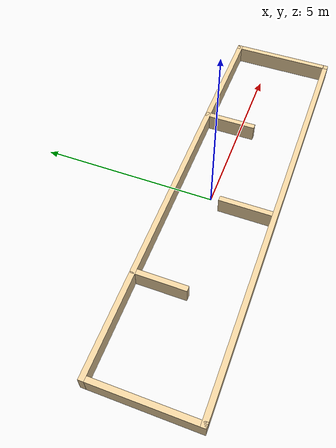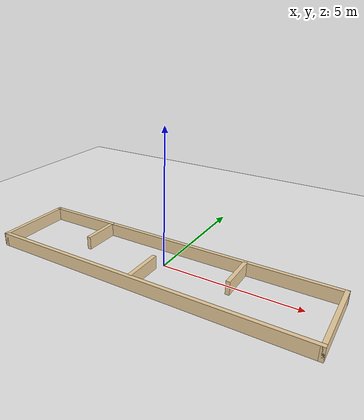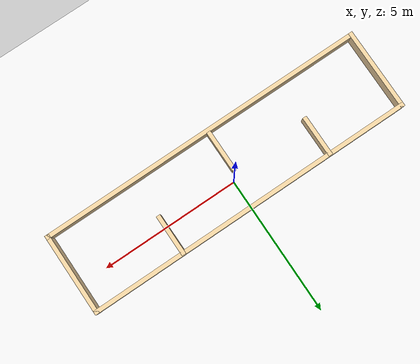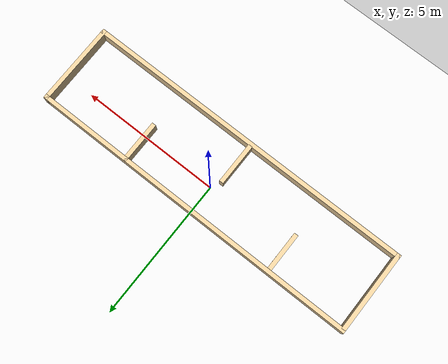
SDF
<sdf version="1.7">
 <world name="default">
  <light name="sun" type="directional">
   <pose>0 0 10 0 -0 0</pose>
   <diffuse>0.8 0.8 0.8 1</diffuse>
   <specular>0.2 0.2 0.2 1</specular>
   <attenuation>
    <range>1000</range>
    <constant>0.9</constant>
    <linear>0.01</linear>
    <quadratic>0.001</quadratic>
   </attenuation>
   <direction>-0.5 0.1 -0.9</direction>
   <spot><inner_angle>0</inner_angle><outer_angle>0</outer_angle><falloff>0</falloff></spot>
  </light>
  <model name="ground_plane">
   <static>1</static>
   <link name="link">
    <collision name="collision">
     <geometry><plane><normal>0 0 1</normal><size>100 100</size></plane></geometry>
     <surface>
      <contact><collide_bitmask>65535</collide_bitmask></contact>
      <friction><ode><mu>100</mu><mu2>50</mu2></ode></friction>
     </surface>
    </collision>
    <visual name="visual">
     <cast_shadows>0</cast_shadows>
     <geometry><plane><normal>0 0 1</normal><size>100 100</size></plane></geometry>
     <material>
      <script><uri>file://media/materials/scripts/gazebo.material</uri><name>Gazebo/White</name></script>
     </material>
    </visual>
   </link>
  </model>
  <gravity>0 0 -9.8</gravity>
  <magnetic_field>6e-06 2.3e-05 -4.2e-05</magnetic_field>
  <atmosphere type="adiabatic"/>
  <physics type="ode">
   <max_step_size>0.001</max_step_size>
   <real_time_factor>1</real_time_factor>
   <real_time_update_rate>1000</real_time_update_rate>
  </physics>
  <scene><ambient>0.4 0.4 0.4 1</ambient><background>0.7 0.7 0.7 1</background><shadows>1</shadows></scene>
  <spherical_coordinates>
   <surface_model>EARTH_WGS84</surface_model>
   <latitude_deg>0</latitude_deg>
   <longitude_deg>0</longitude_deg>
   <elevation>0</elevation>
   <heading_deg>0</heading_deg>
  </spherical_coordinates>
  <model name="obstacle_course">
   <pose>0 1 -1 0 -0 0</pose>
   <link name="wall_0">
    <collision name="wall_0_collision">
     <geometry><box><size>3 0.15 0.5</size></box></geometry>
     <pose>0 0 1.25 0 -0 0</pose>
    </collision>
    <visual name="wall_0_visual">
     <pose>0 0 1.25 0 -0 0</pose>
     <geometry><box><size>3 0.15 0.5</size></box></geometry>
     <material>
      <script><uri>file://media/materials/scripts/gazebo.material</uri><name>Gazebo/Grey</name></script>
      <ambient>0.921569 0.807843 0.615686 1</ambient>
     </material>
     <meta><layer>0</layer></meta>
    </visual>
    <pose>-5.925 -1.4175 0 0 -0 -1.5708</pose>
   </link>
   <link name="wall_01">
    <collision name="wall_01_collision">
     <geometry><box><size>12 0.15 0.5</size></box></geometry>
     <pose>0 0 1.25 0 -0 0</pose>
    </collision>
    <visual name="wall_01_visual">
     <pose>0 0 1.25 0 -0 0</pose>
     <geometry><box><size>12 0.15 0.5</size></box></geometry>
     <material>
      <script><uri>file://media/materials/scripts/gazebo.material</uri><name>Gazebo/Grey</name></script>
      <ambient>0.921569 0.807843 0.615686 1</ambient>
     </material>
     <meta><layer>0</layer></meta>
    </visual>
    <pose>0 -2.8425 0 0 -0 0</pose>
   </link>
   <link name="wall_02">
    <collision name="wall_02_collision">
     <geometry><box><size>3 0.15 0.5</size></box></geometry>
     <pose>0 0 1.25 0 -0 0</pose>
    </collision>
    <visual name="wall_02_visual">
     <pose>0 0 1.25 0 -0 0</pose>
     <geometry><box><size>3 0.15 0.5</size></box></geometry>
     <material>
      <script><uri>file://media/materials/scripts/gazebo.material</uri><name>Gazebo/Grey</name></script>
      <ambient>0.921569 0.807843 0.615686 1</ambient>
     </material>
     <meta><layer>0</layer></meta>
    </visual>
    <pose>5.925 -1.4175 0 0 -0 1.5708</pose>
   </link>
   <link name="wall_04">
    <collision name="wall_04_collision">
     <geometry><box><size>1.5 0.15 0.5</size></box></geometry>
     <pose>0 0 1.25 0 -0 0</pose>
    </collision>
    <visual name="wall_04_visual">
     <pose>0 0 1.25 0 -0 0</pose>
     <geometry><box><size>1.5 0.15 0.5</size></box></geometry>
     <material>
      <script><uri>file://media/materials/scripts/gazebo.material</uri><name>Gazebo/Grey</name></script>
      <ambient>0.921569 0.807843 0.615686 1</ambient>
     </material>
     <meta><layer>0</layer></meta>
    </visual>
    <pose>-3.065 -0.6875 0 0 -0 1.5708</pose>
   </link>
   <link name="wall_03">
    <collision name="wall_03_collision">
     <geometry><box><size>12 0.15 0.5</size></box></geometry>
     <pose>0 0 1.25 0 -0 0</pose>
    </collision>
    <visual name="wall_03_visual">
     <pose>0 0 1.25 0 -0 0</pose>
     <geometry><box><size>12 0.15 0.5</size></box></geometry>
     <material>
      <script><uri>file://media/materials/scripts/gazebo.material</uri><name>Gazebo/Grey</name></script>
      <ambient>0.921569 0.807843 0.615686 1</ambient>
     </material>
     <meta><layer>0</layer></meta>
    </visual>
    <pose>0 0.0075 0 0 -0 3.14159</pose>
   </link>
   <link name="wall_05">
    <collision name="wall_05_collision">
     <geometry><box><size>1.5 0.15 0.5</size></box></geometry>
     <pose>0 0 1.25 0 -0 0</pose>
    </collision>
    <visual name="wall_05_visual">
     <pose>0 0 1.25 0 -0 0</pose>
     <geometry><box><size>1.5 0.15 0.5</size></box></geometry>
     <material>
      <script><uri>file://media/materials/scripts/gazebo.material</uri><name>Gazebo/Grey</name></script>
      <ambient>0.921569 0.807843 0.615686 1</ambient>
     </material>
     <meta><layer>0</layer></meta>
    </visual>
    <pose>-0.215 -2.0375 0 0 -0 -1.5708</pose>
   </link>
   <link name="wall_06">
    <collision name="wall_06_collision">
     <geometry><box><size>1.5 0.15 0.5</size></box></geometry>
     <pose>0 0 1.25 0 -0 0</pose>
    </collision>
    <visual name="wall_06_visual">
     <pose>0 0 1.25 0 -0 0</pose>
     <geometry><box><size>1.5 0.15 0.5</size></box></geometry>
     <material>
      <script><uri>file://media/materials/scripts/gazebo.material</uri><name>Gazebo/Grey</name></script>
      <ambient>0.921569 0.807843 0.615686 1</ambient>
     </material>
     <meta><layer>0</layer></meta>
    </visual>
    <pose>2.635 -0.6875 0 0 -0 1.5708</pose>
   </link>
   <static>1</static>
  </model>
 </world>
</sdf>
